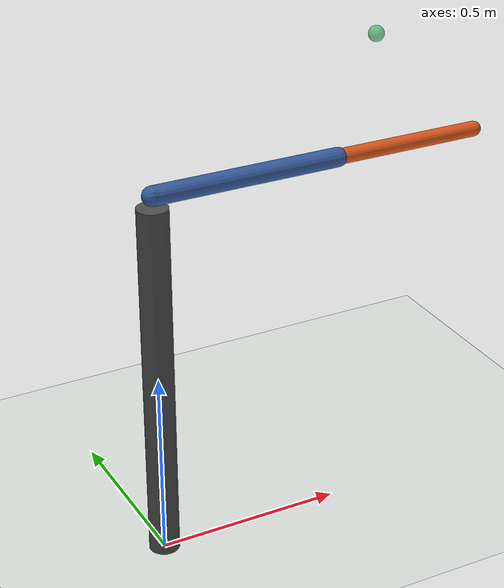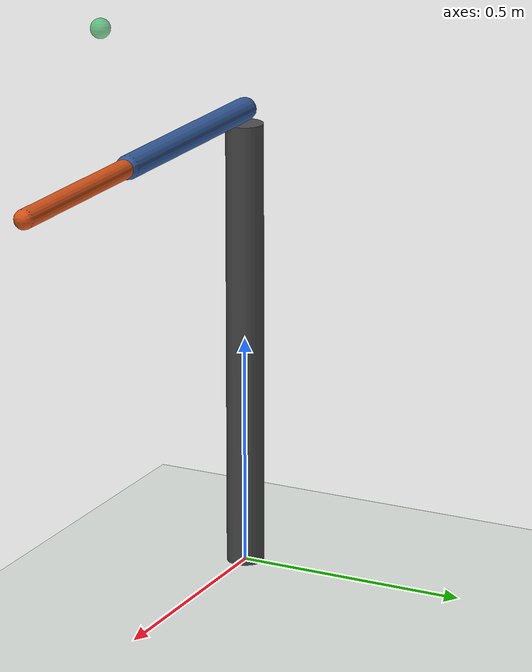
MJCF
<mujoco model="arm2">
  <compiler angle="radian" autolimits="true"/>
  <option timestep="0.002"/>

  <default>
    <joint type="hinge" axis="0 -1 0" damping="0.02"/>
    <geom contype="0" conaffinity="0" type="capsule"/>
    <motor gear="1"/>
  </default>

  <worldbody>
    <light pos="0 -2 3" dir="0 1 -1"/>
    <geom name="floor" type="plane" size="2 2 0.05" rgba=".85 .87 .85 1"/>
    <geom name="pedestal" type="cylinder" fromto="0 0 0 0 0 0.97" size="0.04" rgba=".3 .3 .3 1"/>

    <body name="link1" pos="0 0 1">
      <joint name="shoulder" range="-1.2 2.4"/>
      <inertial pos="0.25 0 0" mass="1.0" diaginertia="1e-4 0.0208333 0.0208333"/>
      <geom name="link1" fromto="0 0 0 0.5 0 0" size="0.025" rgba=".2 .35 .6 1"/>

      <body name="link2" pos="0.5 0 0">
        <joint name="elbow" range="-2.6 2.6"/>
        <inertial pos="0.2 0 0" mass="0.8" diaginertia="1e-4 0.0106667 0.0106667"/>
        <geom name="link2" fromto="0 0 0 0.4 0 0" size="0.02" rgba=".85 .33 .1 1"/>
        <site name="ee" pos="0.4 0 0" size="0.012" rgba="1 .8 0 1"/>
      </body>
    </body>

    <!-- A mocap body has no DOF and is moved by writing data.mocap_pos; used as an IK target marker. -->
    <body name="target" mocap="true" pos="0.6 0 1.3">
      <geom name="target" type="sphere" size="0.02" rgba=".1 .7 .3 .6"/>
    </body>
  </worldbody>

  <actuator>
    <motor name="shoulder" joint="shoulder" ctrlrange="-25 25"/>
    <motor name="elbow" joint="elbow" ctrlrange="-15 15"/>
  </actuator>

  <sensor>
    <jointpos name="q_shoulder" joint="shoulder"/>
    <jointpos name="q_elbow" joint="elbow"/>
    <framepos name="ee_pos" objtype="site" objname="ee"/>
  </sensor>

  <keyframe>
    <key name="bent" qpos="0.6 -1.2"/>
  </keyframe>
</mujoco>
